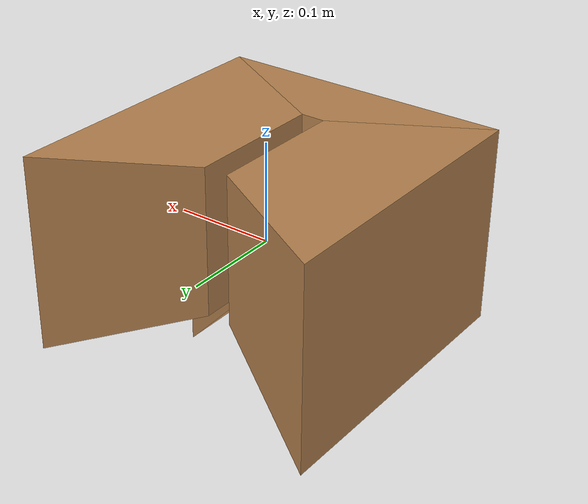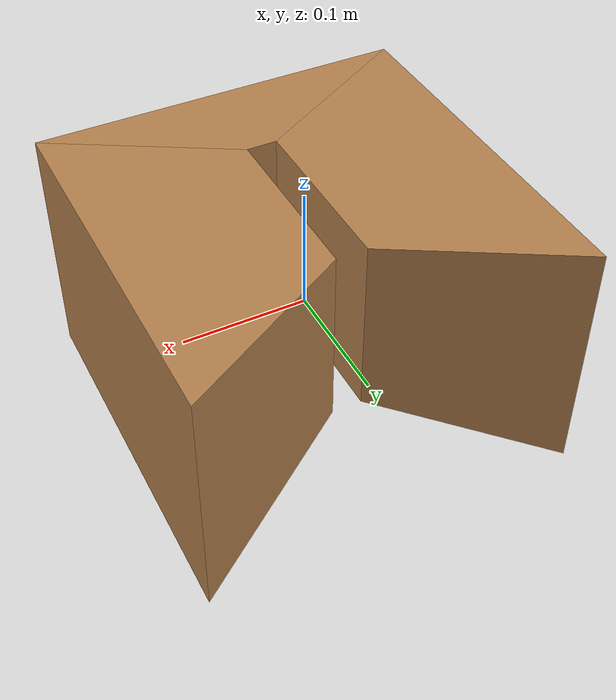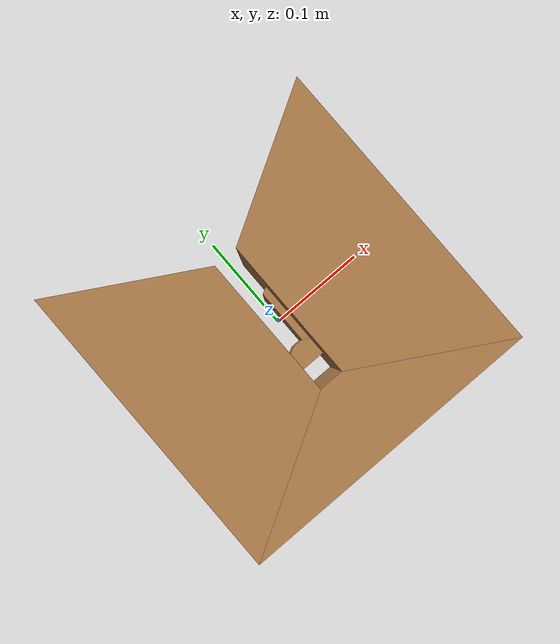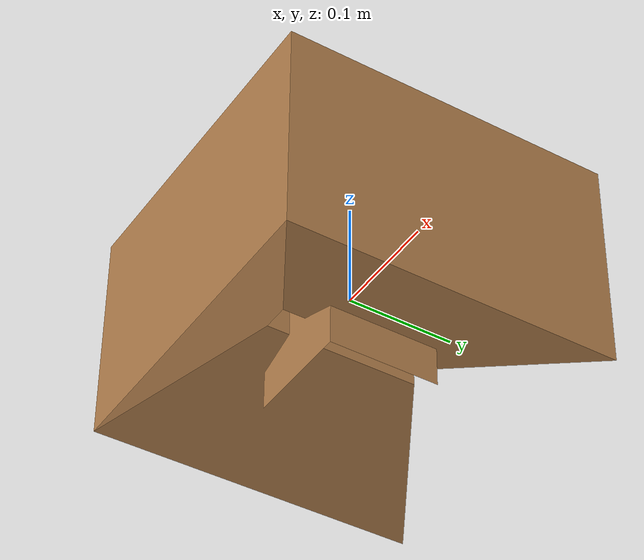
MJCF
<?xml version="1.0" ?>
<mujoco model="hole1">
    <asset>
        <mesh file="hole/0.stl" name="mesh_0"/>
        <mesh file="hole/1.stl" name="mesh_1"/>
        <mesh file="hole/2.stl" name="mesh_2"/>
        <mesh file="hole/3.stl" name="mesh_3"/>
        <mesh file="hole/4.stl" name="mesh_4"/>
        <texture file="../texture/red-wood.png" name="red-wood"/>
        <material name="redwood_mat" texture="red-wood" texrepeat="3 3" specular="0.4" shininess="0.1"/>
    </asset>
    <worldbody>
        <body>
            <body name="object">
                <geom mesh="mesh_0" type="mesh" group="0" material="redwood_mat"/>
                <geom mesh="mesh_1" type="mesh" group="0" material="redwood_mat"/>
                <geom mesh="mesh_2" type="mesh" group="0" material="redwood_mat"/>
                <geom mesh="mesh_3" type="mesh" group="0" material="redwood_mat"/>
                <geom mesh="mesh_4" type="mesh" group="0" material="redwood_mat"/>
            </body>
        </body>
    </worldbody>
</mujoco>
